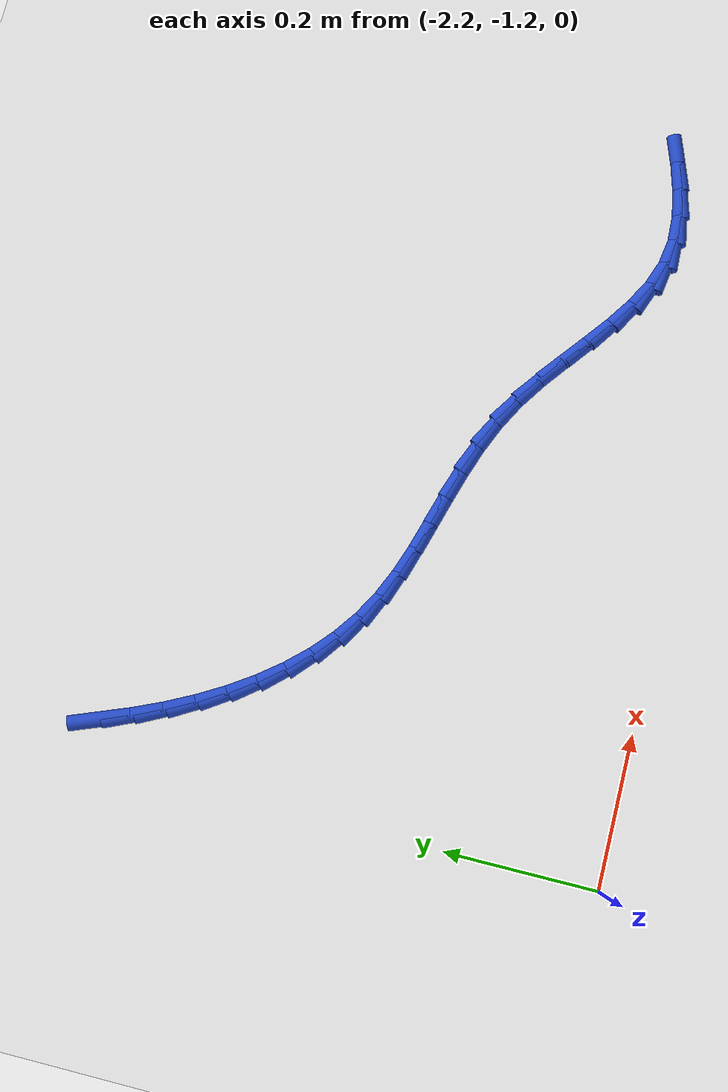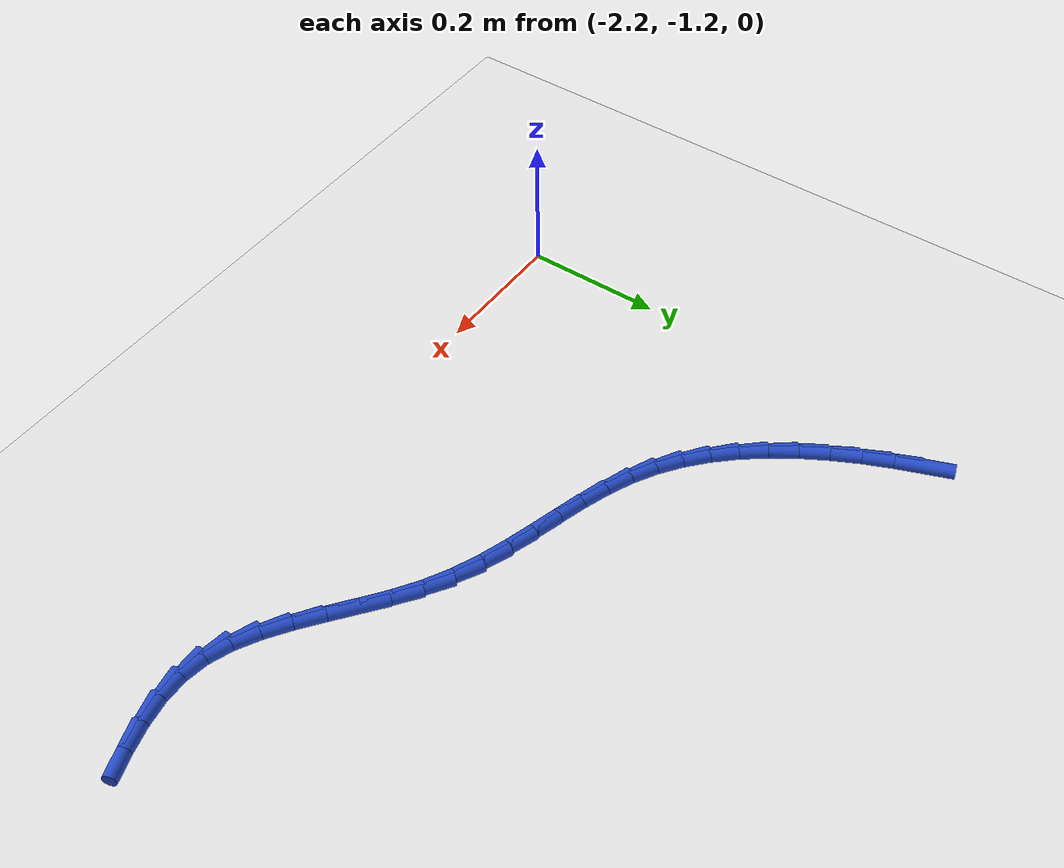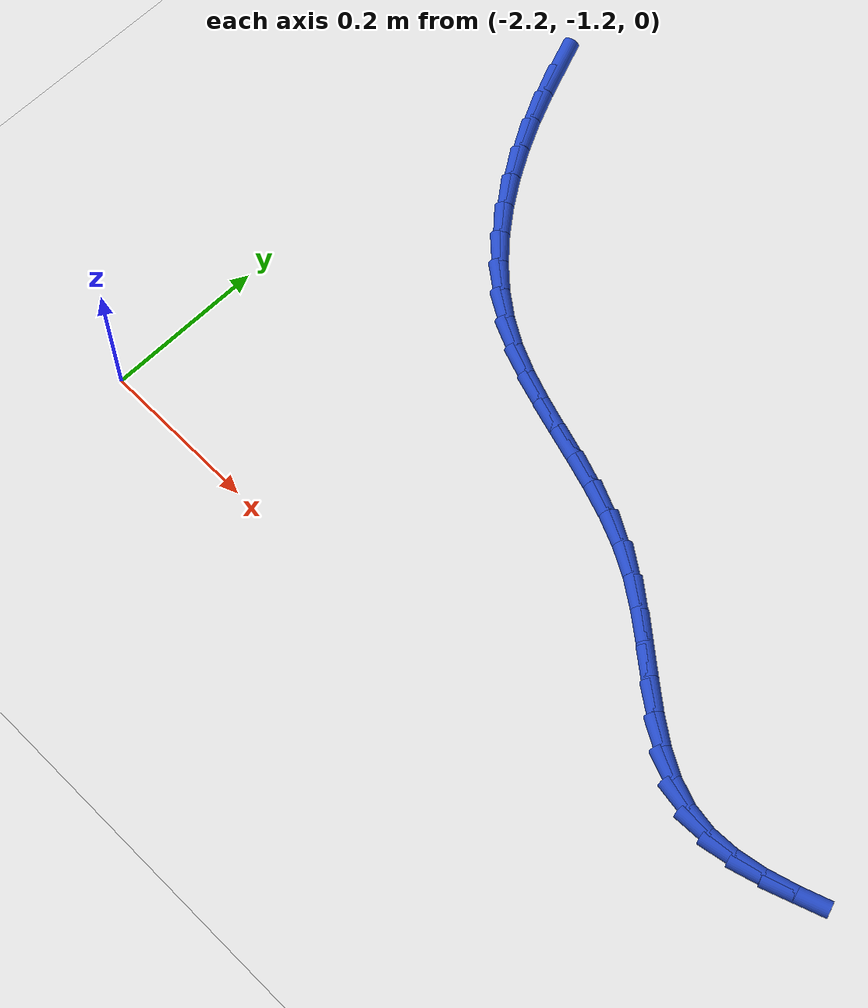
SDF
<sdf version="1.6">
 <world name="default">
  <model name="ground_plane">
   <static>1</static>
   <link name="link">
    <collision name="collision">
     <geometry><plane><normal>0 0 1</normal><size>100 100</size></plane></geometry>
     <surface><friction><ode><mu>100</mu><mu2>50</mu2></ode></friction></surface>
    </collision>
    <visual name="visual">
     <cast_shadows>0</cast_shadows>
     <geometry><plane><normal>0 0 1</normal><size>100 100</size></plane></geometry>
     <material>
      <script><uri>file://media/materials/scripts/gazebo.material</uri><name>Gazebo/WhiteGlow</name></script>
     </material>
    </visual>
   </link>
  </model>
  <model name="line">
   <link name="link_105">
    <pose>-2.1459090637872538 -0.5374539577527391 0.01 0 1.57 -1.1980494473766576</pose>
    <collision name="collision">
     <geometry><cylinder><radius>0.01</radius><length>0.08</length></cylinder></geometry>
    </collision>
    <visual name="visual">
     <material>
      <script><name>Gazebo/Blue</name><uri>file://media/materials/scripts/gazebo.material</uri></script>
     </material>
     <geometry><cylinder><radius>0.01</radius><length>0.08</length></cylinder></geometry>
    </visual>
   </link>
   <link name="link_106">
    <pose>-2.1304727315482963 -0.5769303772739479 0.01 0 1.57 -1.1517242304589137</pose>
    <collision name="collision">
     <geometry><cylinder><radius>0.01</radius><length>0.08</length></cylinder></geometry>
    </collision>
    <visual name="visual">
     <material>
      <script><name>Gazebo/Blue</name><uri>file://media/materials/scripts/gazebo.material</uri></script>
     </material>
     <geometry><cylinder><radius>0.01</radius><length>0.08</length></cylinder></geometry>
    </visual>
   </link>
   <link name="link_107">
    <pose>-2.113378073552324 -0.6153056655503262 0.01 0 1.57 -1.0999572179643244</pose>
    <collision name="collision">
     <geometry><cylinder><radius>0.01</radius><length>0.08</length></cylinder></geometry>
    </collision>
    <visual name="visual">
     <material>
      <script><name>Gazebo/Blue</name><uri>file://media/materials/scripts/gazebo.material</uri></script>
     </material>
     <geometry><cylinder><radius>0.01</radius><length>0.08</length></cylinder></geometry>
    </visual>
   </link>
   <link name="link_108">
    <pose>-2.094559007323402 -0.6522766948937504 0.01 0 1.57 -1.0418950211615596</pose>
    <collision name="collision">
     <geometry><cylinder><radius>0.01</radius><length>0.08</length></cylinder></geometry>
    </collision>
    <visual name="visual">
     <material>
      <script><name>Gazebo/Blue</name><uri>file://media/materials/scripts/gazebo.material</uri></script>
     </material>
     <geometry><cylinder><radius>0.01</radius><length>0.08</length></cylinder></geometry>
    </visual>
   </link>
   <link name="link_109">
    <pose>-2.0739494503855926 -0.6875403376160977 0.01 0 1.57 -0.9766280442712276</pose>
    <collision name="collision">
     <geometry><cylinder><radius>0.01</radius><length>0.08</length></cylinder></geometry>
    </collision>
    <visual name="visual">
     <material>
      <script><name>Gazebo/Blue</name><uri>file://media/materials/scripts/gazebo.material</uri></script>
     </material>
     <geometry><cylinder><radius>0.01</radius><length>0.08</length></cylinder></geometry>
    </visual>
   </link>
   <link name="link_110">
    <pose>-2.05148332026296 -0.720793466029243 0.01 0 1.57 -0.9032465320769861</pose>
    <collision name="collision">
     <geometry><cylinder><radius>0.01</radius><length>0.08</length></cylinder></geometry>
    </collision>
    <visual name="visual">
     <material>
      <script><name>Gazebo/Blue</name><uri>file://media/materials/scripts/gazebo.material</uri></script>
     </material>
     <geometry><cylinder><radius>0.01</radius><length>0.08</length></cylinder></geometry>
    </visual>
   </link>
   <link name="link_111">
    <pose>-2.027094534479567 -0.7517329524450633 0.01 0 1.57 -0.8209441401079351</pose>
    <collision name="collision">
     <geometry><cylinder><radius>0.01</radius><length>0.08</length></cylinder></geometry>
    </collision>
    <visual name="visual">
     <material>
      <script><name>Gazebo/Blue</name><uri>file://media/materials/scripts/gazebo.material</uri></script>
     </material>
     <geometry><cylinder><radius>0.01</radius><length>0.08</length></cylinder></geometry>
    </visual>
   </link>
   <link name="link_112">
    <pose>-2.000717010559477 -0.7800556691754353 0.01 0 1.57 -0.7291833573214924</pose>
    <collision name="collision">
     <geometry><cylinder><radius>0.01</radius><length>0.08</length></cylinder></geometry>
    </collision>
    <visual name="visual">
     <material>
      <script><name>Gazebo/Blue</name><uri>file://media/materials/scripts/gazebo.material</uri></script>
     </material>
     <geometry><cylinder><radius>0.01</radius><length>0.08</length></cylinder></geometry>
    </visual>
   </link>
   <link name="link_113">
    <pose>-1.9722846660267532 -0.8054584885322353 0.01 0 1.57 -0.6279234089216605</pose>
    <collision name="collision">
     <geometry><cylinder><radius>0.01</radius><length>0.08</length></cylinder></geometry>
    </collision>
    <visual name="visual">
     <material>
      <script><name>Gazebo/Blue</name><uri>file://media/materials/scripts/gazebo.material</uri></script>
     </material>
     <geometry><cylinder><radius>0.01</radius><length>0.08</length></cylinder></geometry>
    </visual>
   </link>
   <link name="link_114">
    <pose>-1.9417314184054588 -0.8276382828273396 0.01 0 1.57 -0.517996211130973</pose>
    <collision name="collision">
     <geometry><cylinder><radius>0.01</radius><length>0.08</length></cylinder></geometry>
    </collision>
    <visual name="visual">
     <material>
      <script><name>Gazebo/Blue</name><uri>file://media/materials/scripts/gazebo.material</uri></script>
     </material>
     <geometry><cylinder><radius>0.01</radius><length>0.08</length></cylinder></geometry>
    </visual>
   </link>
   <link name="link_115">
    <pose>-1.9089929249257367 -0.8462960874594332 0.01 0 1.57 -0.41335666121111814</pose>
    <collision name="collision">
     <geometry><cylinder><radius>0.01</radius><length>0.08</length></cylinder></geometry>
    </collision>
    <visual name="visual">
     <material>
      <script><name>Gazebo/Blue</name><uri>file://media/materials/scripts/gazebo.material</uri></script>
     </material>
     <geometry><cylinder><radius>0.01</radius><length>0.08</length></cylinder></geometry>
    </visual>
   </link>
   <link name="link_116">
    <pose>-1.8741849152740893 -0.86156384812658 0.01 0 1.57 -0.33815172475770083</pose>
    <collision name="collision">
     <geometry><cylinder><radius>0.01</radius><length>0.08</length></cylinder></geometry>
    </collision>
    <visual name="visual">
     <material>
      <script><name>Gazebo/Blue</name><uri>file://media/materials/scripts/gazebo.material</uri></script>
     </material>
     <geometry><cylinder><radius>0.01</radius><length>0.08</length></cylinder></geometry>
    </visual>
   </link>
   <link name="link_117">
    <pose>-1.837757568088746 -0.874373841131705 0.01 0 1.57 -0.29398318420653075</pose>
    <collision name="collision">
     <geometry><cylinder><radius>0.01</radius><length>0.08</length></cylinder></geometry>
    </collision>
    <visual name="visual">
     <material>
      <script><name>Gazebo/Blue</name><uri>file://media/materials/scripts/gazebo.material</uri></script>
     </material>
     <geometry><cylinder><radius>0.01</radius><length>0.08</length></cylinder></geometry>
    </visual>
   </link>
   <link name="link_118">
    <pose>-1.8001974382568273 -0.8857453905173889 0.01 0 1.57 -0.27917850460244553</pose>
    <collision name="collision">
     <geometry><cylinder><radius>0.01</radius><length>0.08</length></cylinder></geometry>
    </collision>
    <visual name="visual">
     <material>
      <script><name>Gazebo/Blue</name><uri>file://media/materials/scripts/gazebo.material</uri></script>
     </material>
     <geometry><cylinder><radius>0.01</radius><length>0.08</length></cylinder></geometry>
    </visual>
   </link>
   <link name="link_119">
    <pose>-1.761991080665456 -0.8966978203262121 0.01 0 1.57 -0.2924805395529646</pose>
    <collision name="collision">
     <geometry><cylinder><radius>0.01</radius><length>0.08</length></cylinder></geometry>
    </collision>
    <visual name="visual">
     <material>
      <script><name>Gazebo/Blue</name><uri>file://media/materials/scripts/gazebo.material</uri></script>
     </material>
     <geometry><cylinder><radius>0.01</radius><length>0.08</length></cylinder></geometry>
    </visual>
   </link>
   <link name="link_120">
    <pose>-1.723625050201752 -0.9082504546007555 0.01 0 1.57 -0.3333561645717302</pose>
    <collision name="collision">
     <geometry><cylinder><radius>0.01</radius><length>0.08</length></cylinder></geometry>
    </collision>
    <visual name="visual">
     <material>
      <script><name>Gazebo/Blue</name><uri>file://media/materials/scripts/gazebo.material</uri></script>
     </material>
     <geometry><cylinder><radius>0.01</radius><length>0.08</length></cylinder></geometry>
    </visual>
   </link>
   <link name="link_121">
    <pose>-1.6855859017528385 -0.9214226173835989 0.01 0 1.57 -0.4016450931128742</pose>
    <collision name="collision">
     <geometry><cylinder><radius>0.01</radius><length>0.08</length></cylinder></geometry>
    </collision>
    <visual name="visual">
     <material>
      <script><name>Gazebo/Blue</name><uri>file://media/materials/scripts/gazebo.material</uri></script>
     </material>
     <geometry><cylinder><radius>0.01</radius><length>0.08</length></cylinder></geometry>
    </visual>
   </link>
   <link name="link_122">
    <pose>-1.6483601902058371 -0.9372336327173235 0.01 0 1.57 -0.496092385334742</pose>
    <collision name="collision">
     <geometry><cylinder><radius>0.01</radius><length>0.08</length></cylinder></geometry>
    </collision>
    <visual name="visual">
     <material>
      <script><name>Gazebo/Blue</name><uri>file://media/materials/scripts/gazebo.material</uri></script>
     </material>
     <geometry><cylinder><radius>0.01</radius><length>0.08</length></cylinder></geometry>
    </visual>
   </link>
   <link name="link_123">
    <pose>-1.6124274564801269 -0.9566818455448367 0.01 0 1.57 -0.5893944230800412</pose>
    <collision name="collision">
     <geometry><cylinder><radius>0.01</radius><length>0.08</length></cylinder></geometry>
    </collision>
    <visual name="visual">
     <material>
      <script><name>Gazebo/Blue</name><uri>file://media/materials/scripts/gazebo.material</uri></script>
     </material>
     <geometry><cylinder><radius>0.01</radius><length>0.08</length></cylinder></geometry>
    </visual>
   </link>
   <link name="link_124">
    <pose>-1.5779279977203924 -0.9797509070970248 0.01 0 1.57 -0.6467483221429672</pose>
    <collision name="collision">
     <geometry><cylinder><radius>0.01</radius><length>0.08</length></cylinder></geometry>
    </collision>
    <visual name="visual">
     <material>
      <script><name>Gazebo/Blue</name><uri>file://media/materials/scripts/gazebo.material</uri></script>
     </material>
     <geometry><cylinder><radius>0.01</radius><length>0.08</length></cylinder></geometry>
    </visual>
   </link>
   <link name="link_125">
    <pose>-1.5445184976732813 -1.0049779587182737 0.01 0 1.57 -0.6682088090943559</pose>
    <collision name="collision">
     <geometry><cylinder><radius>0.01</radius><length>0.08</length></cylinder></geometry>
    </collision>
    <visual name="visual">
     <material>
      <script><name>Gazebo/Blue</name><uri>file://media/materials/scripts/gazebo.material</uri></script>
     </material>
     <geometry><cylinder><radius>0.01</radius><length>0.08</length></cylinder></geometry>
    </visual>
   </link>
   <link name="link_126">
    <pose>-1.511818609443739 -1.030789381402769 0.01 0 1.57 -0.6541741015684531</pose>
    <collision name="collision">
     <geometry><cylinder><radius>0.01</radius><length>0.08</length></cylinder></geometry>
    </collision>
    <visual name="visual">
     <material>
      <script><name>Gazebo/Blue</name><uri>file://media/materials/scripts/gazebo.material</uri></script>
     </material>
     <geometry><cylinder><radius>0.01</radius><length>0.08</length></cylinder></geometry>
    </visual>
   </link>
   <link name="link_127">
    <pose>-1.4794479861367114 -1.0556115561446968 0.01 0 1.57 -0.6016458669273882</pose>
    <collision name="collision">
     <geometry><cylinder><radius>0.01</radius><length>0.08</length></cylinder></geometry>
    </collision>
    <visual name="visual">
     <material>
      <script><name>Gazebo/Blue</name><uri>file://media/materials/scripts/gazebo.material</uri></script>
     </material>
     <geometry><cylinder><radius>0.01</radius><length>0.08</length></cylinder></geometry>
    </visual>
   </link>
   <link name="link_128">
    <pose>-1.4470262808571426 -1.077870863938242 0.01 0 1.57 -0.5040948963917227</pose>
    <collision name="collision">
     <geometry><cylinder><radius>0.01</radius><length>0.08</length></cylinder></geometry>
    </collision>
    <visual name="visual">
     <material>
      <script><name>Gazebo/Blue</name><uri>file://media/materials/scripts/gazebo.material</uri></script>
     </material>
     <geometry><cylinder><radius>0.01</radius><length>0.08</length></cylinder></geometry>
    </visual>
   </link>
   <link name="link_129">
    <pose>-1.414173146709979 -1.0959936857775905 0.01 0 1.57 -0.35324812435188296</pose>
    <collision name="collision">
     <geometry><cylinder><radius>0.01</radius><length>0.08</length></cylinder></geometry>
    </collision>
    <visual name="visual">
     <material>
      <script><name>Gazebo/Blue</name><uri>file://media/materials/scripts/gazebo.material</uri></script>
     </material>
     <geometry><cylinder><radius>0.01</radius><length>0.08</length></cylinder></geometry>
    </visual>
   </link>
   <link name="link_130">
    <pose>-1.3805082368001655 -1.1084064026569282 0.01 0 1.57 -0.15166258942503255</pose>
    <collision name="collision">
     <geometry><cylinder><radius>0.01</radius><length>0.08</length></cylinder></geometry>
    </collision>
    <visual name="visual">
     <material>
      <script><name>Gazebo/Blue</name><uri>file://media/materials/scripts/gazebo.material</uri></script>
     </material>
     <geometry><cylinder><radius>0.01</radius><length>0.08</length></cylinder></geometry>
    </visual>
   </link>
   <link name="link_131">
    <pose>-1.345686282601269 -1.113728458269244 0.01 0 1.57 0.03914909722672833</pose>
    <collision name="collision">
     <geometry><cylinder><radius>0.01</radius><length>0.08</length></cylinder></geometry>
    </collision>
    <visual name="visual">
     <material>
      <script><name>Gazebo/Blue</name><uri>file://media/materials/scripts/gazebo.material</uri></script>
     </material>
     <geometry><cylinder><radius>0.01</radius><length>0.08</length></cylinder></geometry>
    </visual>
   </link>
   <link name="link_132">
    <pose>-1.3096779358070532 -1.1123180433676694 0.01 0 1.57 0.18315478201272045</pose>
    <collision name="collision">
     <geometry><cylinder><radius>0.01</radius><length>0.08</length></cylinder></geometry>
    </collision>
    <visual name="visual">
     <material>
      <script><name>Gazebo/Blue</name><uri>file://media/materials/scripts/gazebo.material</uri></script>
     </material>
     <geometry><cylinder><radius>0.01</radius><length>0.08</length></cylinder></geometry>
    </visual>
   </link>
   <link name="link_133">
    <pose>-1.2726211224482396 -1.1054539854453456 0.01 0 1.57 0.28275261183302175</pose>
    <collision name="collision">
     <geometry><cylinder><radius>0.01</radius><length>0.08</length></cylinder></geometry>
    </collision>
    <visual name="visual">
     <material>
      <script><name>Gazebo/Blue</name><uri>file://media/materials/scripts/gazebo.material</uri></script>
     </material>
     <geometry><cylinder><radius>0.01</radius><length>0.08</length></cylinder></geometry>
    </visual>
   </link>
   <link name="link_134">
    <pose>-1.234655294614389 -1.0944235110473104 0.01 0 1.57 0.34475370948293443</pose>
    <collision name="collision">
     <geometry><cylinder><radius>0.01</radius><length>0.08</length></cylinder></geometry>
    </collision>
    <visual name="visual">
     <material>
      <script><name>Gazebo/Blue</name><uri>file://media/materials/scripts/gazebo.material</uri></script>
     </material>
     <geometry><cylinder><radius>0.01</radius><length>0.08</length></cylinder></geometry>
    </visual>
   </link>
  </model>
 </world>
</sdf>
